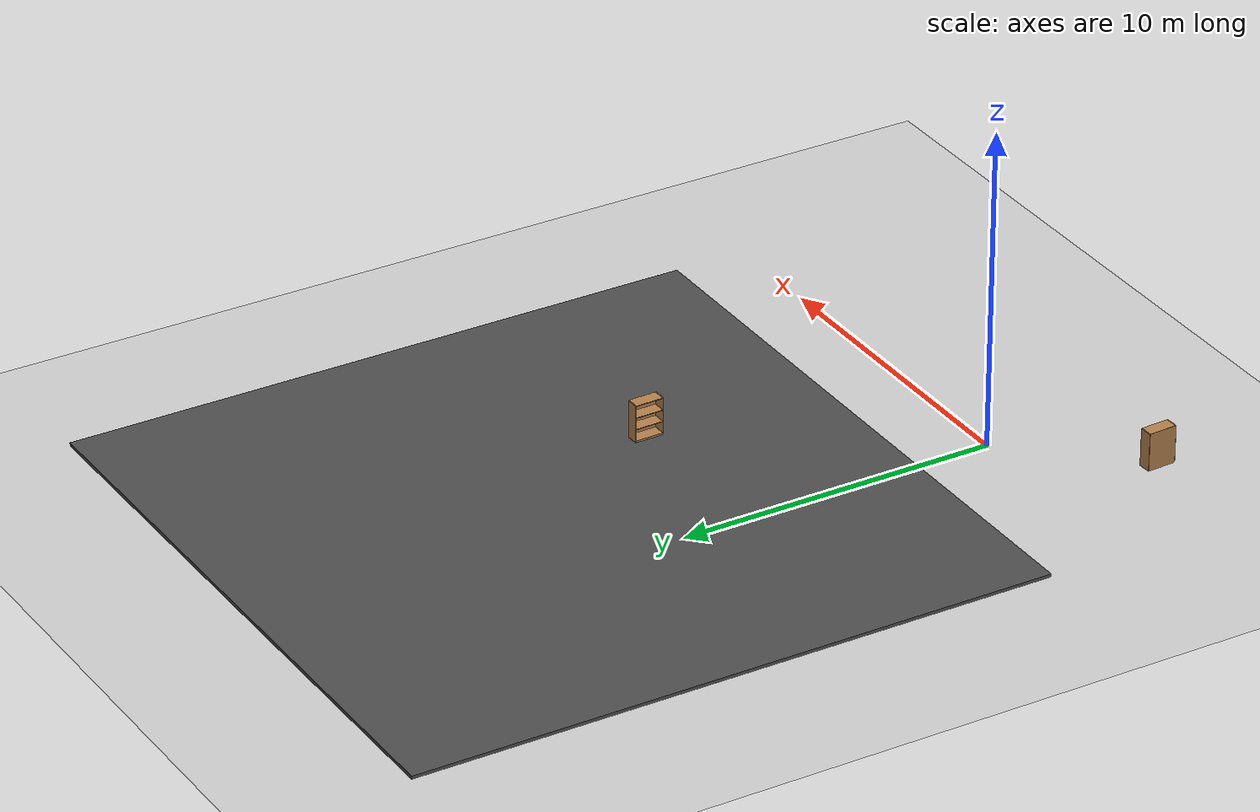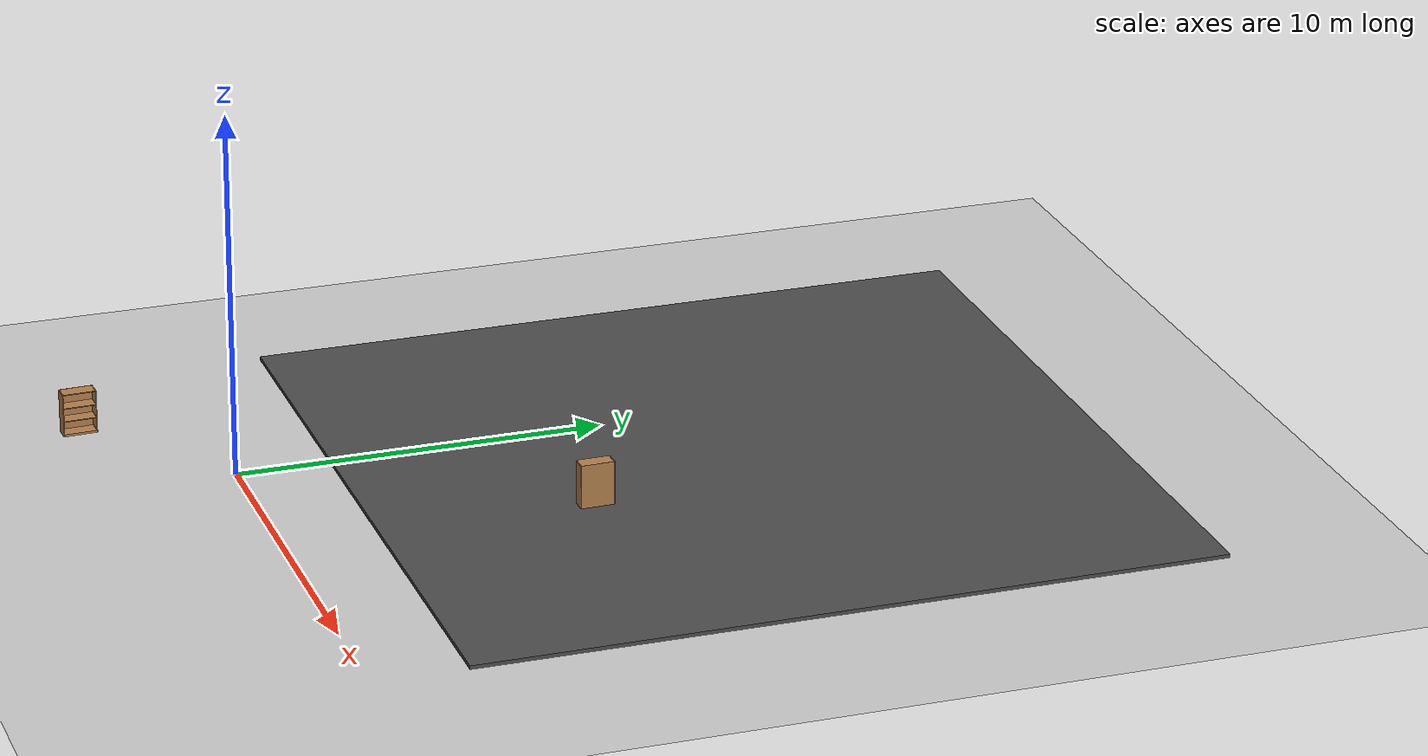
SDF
<sdf version="1.6">
 <world name="default">
  <light name="sun" type="directional">
   <pose>0 0 15 0 -0 0</pose>
   <diffuse>1 1 1 1</diffuse>
   <specular>0.1 0.1 0.1 1</specular>
   <attenuation>
    <range>1000</range>
    <constant>0.9</constant>
    <linear>0.01</linear>
    <quadratic>0.001</quadratic>
   </attenuation>
   <direction>-0.5 0.5 -1</direction>
  </light>
  <model name="ground_plane">
   <static>1</static>
   <link name="link">
    <collision name="collision">
     <geometry><plane><normal>0 0 1</normal><size>100 100</size></plane></geometry>
     <surface><friction><ode><mu>100</mu><mu2>50</mu2></ode></friction></surface>
    </collision>
    <visual name="visual">
     <transparency>1</transparency>
     <cast_shadows>0</cast_shadows>
     <geometry><plane><normal>0 0 1</normal><size>100 100</size></plane></geometry>
     <material>
      <script><uri>file://media/materials/scripts/gazebo.material</uri><name>Gazebo/Grey</name></script>
     </material>
    </visual>
   </link>
  </model>
  <gravity>0 0 -9.8</gravity>
  <magnetic_field>6e-06 2.3e-05 -4.2e-05</magnetic_field>
  <atmosphere type="adiabatic"/>
  <physics name="default_physics" default="0" type="ode">
   <max_step_size>0.001</max_step_size>
   <real_time_factor>1</real_time_factor>
   <real_time_update_rate>1000</real_time_update_rate>
  </physics>
  <scene><ambient>0.4 0.4 0.4 1</ambient><background>0.7 0.7 0.7 1</background><shadows>1</shadows></scene>
  <spherical_coordinates>
   <surface_model>EARTH_WGS84</surface_model>
   <latitude_deg>0</latitude_deg>
   <longitude_deg>0</longitude_deg>
   <elevation>0</elevation>
   <heading_deg>0</heading_deg>
  </spherical_coordinates>
  <model name="bookshelf">
   <static>1</static>
   <link name="link">
    <inertial><mass>1</mass></inertial>
    <collision name="back">
     <pose>0 0.005 0.6 0 -0 0</pose>
     <geometry><box><size>0.9 0.01 1.2</size></box></geometry>
    </collision>
    <visual name="visual1">
     <pose>0 0.005 0.6 0 -0 0</pose>
     <geometry><box><size>0.9 0.01 1.2</size></box></geometry>
     <material>
      <script><uri>file://media/materials/scripts/gazebo.material</uri><name>Gazebo/Wood</name></script>
     </material>
    </visual>
    <collision name="left_side">
     <pose>0.45 -0.195 0.6 0 -0 0</pose>
     <geometry><box><size>0.02 0.4 1.2</size></box></geometry>
    </collision>
    <visual name="visual2">
     <pose>0.45 -0.195 0.6 0 -0 0</pose>
     <geometry><box><size>0.02 0.4 1.2</size></box></geometry>
     <material>
      <script><uri>file://media/materials/scripts/gazebo.material</uri><name>Gazebo/Wood</name></script>
     </material>
    </visual>
    <collision name="right_side">
     <pose>-0.45 -0.195 0.6 0 -0 0</pose>
     <geometry><box><size>0.02 0.4 1.2</size></box></geometry>
    </collision>
    <visual name="visual3">
     <pose>-0.45 -0.195 0.6 0 -0 0</pose>
     <geometry><box><size>0.02 0.4 1.2</size></box></geometry>
     <material>
      <script><uri>file://media/materials/scripts/gazebo.material</uri><name>Gazebo/Wood</name></script>
     </material>
    </visual>
    <collision name="bottom">
     <pose>0 -0.195 0.03 0 -0 0</pose>
     <geometry><box><size>0.88 0.4 0.06</size></box></geometry>
    </collision>
    <visual name="visual4">
     <pose>0 -0.195 0.03 0 -0 0</pose>
     <geometry><box><size>0.88 0.4 0.06</size></box></geometry>
     <material>
      <script><uri>file://media/materials/scripts/gazebo.material</uri><name>Gazebo/Wood</name></script>
     </material>
    </visual>
    <collision name="top">
     <pose>0 -0.195 1.19 0 -0 0</pose>
     <geometry><box><size>0.88 0.4 0.02</size></box></geometry>
    </collision>
    <visual name="visual5">
     <pose>0 -0.195 1.19 0 -0 0</pose>
     <geometry><box><size>0.88 0.4 0.02</size></box></geometry>
     <material>
      <script><uri>file://media/materials/scripts/gazebo.material</uri><name>Gazebo/Wood</name></script>
     </material>
    </visual>
    <collision name="low_shelf">
     <pose>0 -0.195 0.43 0 -0 0</pose>
     <geometry><box><size>0.88 0.4 0.02</size></box></geometry>
    </collision>
    <visual name="visual6">
     <pose>0 -0.195 0.43 0 -0 0</pose>
     <geometry><box><size>0.88 0.4 0.02</size></box></geometry>
     <material>
      <script><uri>file://media/materials/scripts/gazebo.material</uri><name>Gazebo/Wood</name></script>
     </material>
    </visual>
    <collision name="high_shelf">
     <pose>0 -0.195 0.8 0 -0 0</pose>
     <geometry><box><size>0.88 0.4 0.02</size></box></geometry>
    </collision>
    <visual name="visual7">
     <pose>0 -0.195 0.8 0 -0 0</pose>
     <geometry><box><size>0.88 0.4 0.02</size></box></geometry>
     <material>
      <script><uri>file://media/materials/scripts/gazebo.material</uri><name>Gazebo/Wood</name></script>
     </material>
    </visual>
   </link>
   <pose>-3.72922 -3.40451 0.2 0 -0 1.6109</pose>
  </model>
  <model name="bookshelf_clone">
   <static>1</static>
   <link name="link">
    <inertial><mass>1</mass></inertial>
    <collision name="back">
     <pose>0 0.005 0.6 0 -0 0</pose>
     <geometry><box><size>0.9 0.01 1.2</size></box></geometry>
    </collision>
    <visual name="visual1">
     <pose>0 0.005 0.6 0 -0 0</pose>
     <geometry><box><size>0.9 0.01 1.2</size></box></geometry>
     <material>
      <script><uri>file://media/materials/scripts/gazebo.material</uri><name>Gazebo/Wood</name></script>
     </material>
    </visual>
    <collision name="left_side">
     <pose>0.45 -0.195 0.6 0 -0 0</pose>
     <geometry><box><size>0.02 0.4 1.2</size></box></geometry>
    </collision>
    <visual name="visual2">
     <pose>0.45 -0.195 0.6 0 -0 0</pose>
     <geometry><box><size>0.02 0.4 1.2</size></box></geometry>
     <material>
      <script><uri>file://media/materials/scripts/gazebo.material</uri><name>Gazebo/Wood</name></script>
     </material>
    </visual>
    <collision name="right_side">
     <pose>-0.45 -0.195 0.6 0 -0 0</pose>
     <geometry><box><size>0.02 0.4 1.2</size></box></geometry>
    </collision>
    <visual name="visual3">
     <pose>-0.45 -0.195 0.6 0 -0 0</pose>
     <geometry><box><size>0.02 0.4 1.2</size></box></geometry>
     <material>
      <script><uri>file://media/materials/scripts/gazebo.material</uri><name>Gazebo/Wood</name></script>
     </material>
    </visual>
    <collision name="bottom">
     <pose>0 -0.195 0.03 0 -0 0</pose>
     <geometry><box><size>0.88 0.4 0.06</size></box></geometry>
    </collision>
    <visual name="visual4">
     <pose>0 -0.195 0.03 0 -0 0</pose>
     <geometry><box><size>0.88 0.4 0.06</size></box></geometry>
     <material>
      <script><uri>file://media/materials/scripts/gazebo.material</uri><name>Gazebo/Wood</name></script>
     </material>
    </visual>
    <collision name="top">
     <pose>0 -0.195 1.19 0 -0 0</pose>
     <geometry><box><size>0.88 0.4 0.02</size></box></geometry>
    </collision>
    <visual name="visual5">
     <pose>0 -0.195 1.19 0 -0 0</pose>
     <geometry><box><size>0.88 0.4 0.02</size></box></geometry>
     <material>
      <script><uri>file://media/materials/scripts/gazebo.material</uri><name>Gazebo/Wood</name></script>
     </material>
    </visual>
    <collision name="low_shelf">
     <pose>0 -0.195 0.43 0 -0 0</pose>
     <geometry><box><size>0.88 0.4 0.02</size></box></geometry>
    </collision>
    <visual name="visual6">
     <pose>0 -0.195 0.43 0 -0 0</pose>
     <geometry><box><size>0.88 0.4 0.02</size></box></geometry>
     <material>
      <script><uri>file://media/materials/scripts/gazebo.material</uri><name>Gazebo/Wood</name></script>
     </material>
    </visual>
    <collision name="high_shelf">
     <pose>0 -0.195 0.8 0 -0 0</pose>
     <geometry><box><size>0.88 0.4 0.02</size></box></geometry>
    </collision>
    <visual name="visual7">
     <pose>0 -0.195 0.8 0 -0 0</pose>
     <geometry><box><size>0.88 0.4 0.02</size></box></geometry>
     <material>
      <script><uri>file://media/materials/scripts/gazebo.material</uri><name>Gazebo/Wood</name></script>
     </material>
    </visual>
   </link>
   <pose>5.29939 8.21256 0.2 0 0 -1.55394</pose>
  </model>
  <model name="asphalt_plane">
   <static>1</static>
   <link name="link">
    <collision name="collision"><geometry><box><size>20 20 0.1</size></box></geometry></collision>
    <visual name="visual">
     <cast_shadows>0</cast_shadows>
     <geometry><box><size>20 20 0.1</size></box></geometry>
     <material>
      <script>
       <uri>model://asphalt_plane/materials/scripts</uri>
       <uri>model://asphalt_plane/materials/textures</uri>
       <name>vrc/asphalt</name>
      </script>
     </material>
    </visual>
   </link>
   <pose>3.02955 12.4536 0.14 0 -0 0</pose>
  </model>
 </world>
</sdf>
